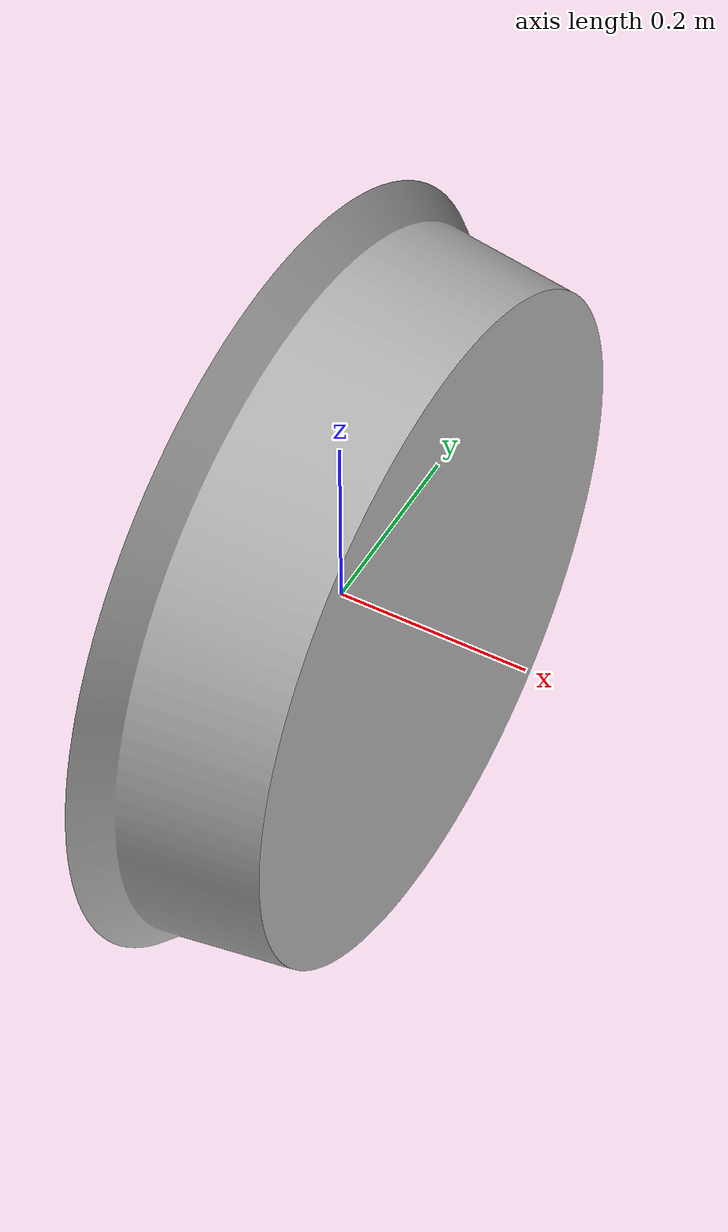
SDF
<?xml version="1.0" ?>
<sdf version="1.5">
  <model name="Rr_wheel">
        <static>false</static>
    <link name="wheel_body">
    <gravity>1</gravity>
    <inertial>
        <mass>200.0</mass>
        <inertia> <!-- inertias are tricky to compute -->
          <!-- http://gazebosim.org/tutorials?tut=inertia&cat=build_robot -->
          <ixx>0.2789</ixx>
          <ixy>0.0</ixy>
          <ixz>0.0</ixz>
          <iyx>0.0</iyx>
          <iyy>0.2789</iyy>
          <iyz>0.0</iyz>
          <izx>0.0</izx>
          <izy>0.0</izy>
          <izz>0.08</izz>
        </inertia>
      </inertial>
      <collision name="collision">
        <geometry>
          <mesh>
            <scale>1 1 1</scale>
            <uri>model://rr_wheel/meshes/rr_wheel.dae</uri>
          </mesh>
        </geometry>
        <surface>
        <friction>
          <ode>
            <mu>0.6</mu>
            <mu2>0.7</mu2>
          </ode>
        </friction>
      </surface>
      </collision>
      <visual name="visual">
        <geometry>
          <mesh>
            <scale>1 1 1</scale>
            <uri>model://rr_wheel/meshes/rr_wheel.dae</uri>
          </mesh>
        </geometry>
      </visual>
    </link>
  </model>
</sdf>
